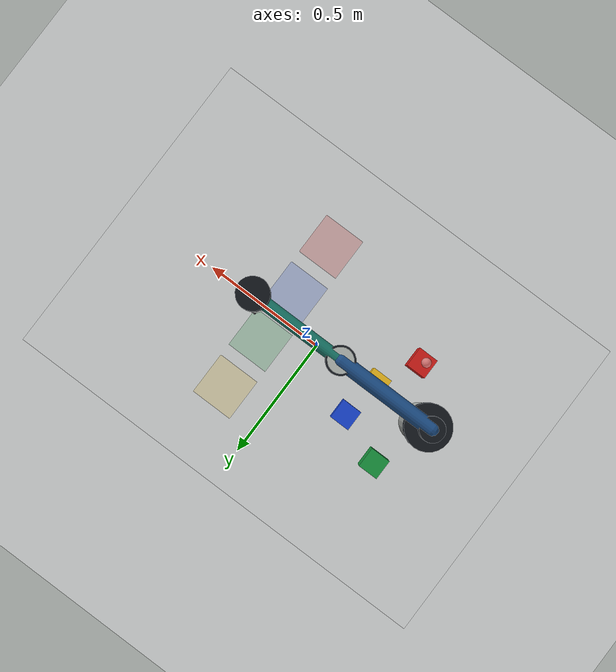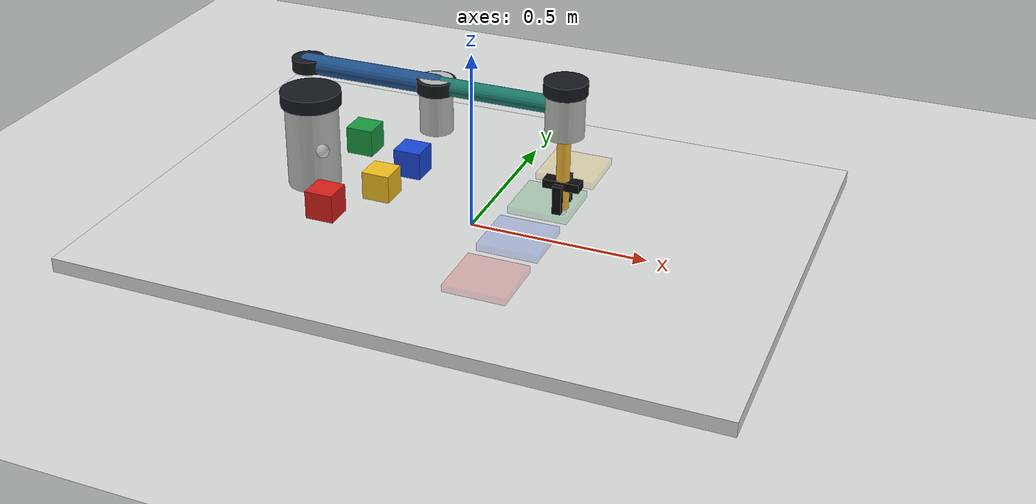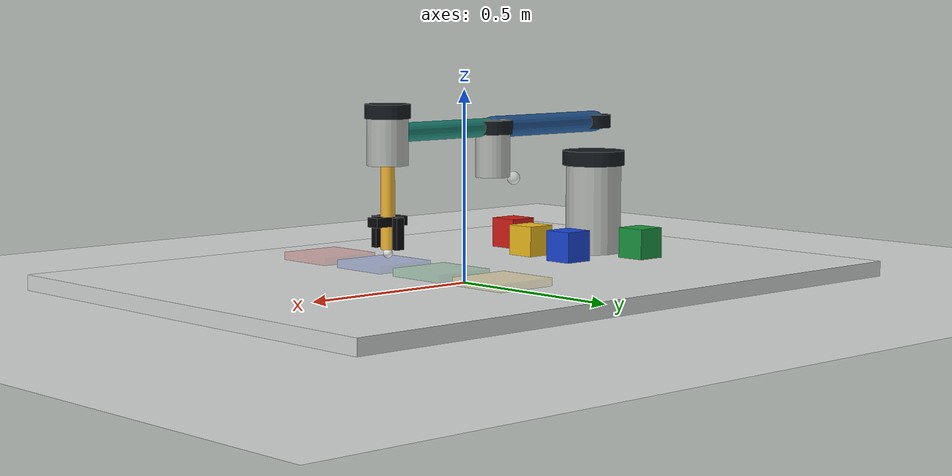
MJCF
<mujoco model="physical_ai_sorting_scara_ik">
  <compiler angle="degree" coordinate="local" inertiafromgeom="true"/>
  <option timestep="0.01" gravity="0 0 -9.81"/>

  <!-- The arm is used kinematically in Version 2, so arm geoms are visual-only.
       We will add real actuator dynamics later after the task logic is stable. -->
  <default>
    <joint damping="1.2" armature="0.02" limited="true"/>
    <geom friction="0.8 0.02 0.001"/>
  </default>

  <asset>
    <texture name="grid" type="2d" builtin="checker" rgb1="0.92 0.92 0.90" rgb2="0.78 0.80 0.82" width="256" height="256"/>
    <material name="table_mat" texture="grid" texrepeat="4 4" reflectance="0.1"/>
    <material name="base_mat" rgba="0.08 0.10 0.12 1"/>
    <material name="column_mat" rgba="0.72 0.74 0.72 1"/>
    <material name="link1_mat" rgba="0.12 0.32 0.55 1"/>
    <material name="link2_mat" rgba="0.10 0.48 0.42 1"/>
    <material name="slide_mat" rgba="0.95 0.72 0.20 1"/>
    <material name="gripper_mat" rgba="0.04 0.04 0.05 1"/>
    <material name="red_mat" rgba="0.85 0.12 0.10 1"/>
    <material name="blue_mat" rgba="0.10 0.28 0.85 1"/>
    <material name="green_mat" rgba="0.10 0.60 0.25 1"/>
    <material name="yellow_mat" rgba="0.95 0.75 0.12 1"/>
    <material name="bin_red_mat" rgba="0.85 0.12 0.10 0.22"/>
    <material name="bin_blue_mat" rgba="0.10 0.28 0.85 0.22"/>
    <material name="bin_green_mat" rgba="0.10 0.60 0.25 0.22"/>
    <material name="bin_yellow_mat" rgba="0.95 0.75 0.12 0.22"/>
    <material name="target_mat" rgba="1.0 1.0 1.0 0.45"/>
  </asset>

  <worldbody>
    <!-- Camera and lighting are part of the digital twin. Later, this camera
         can be used for perception instead of simulator ground truth. -->
    <light name="key" pos="0 -2.5 4" dir="0 0 -1" diffuse="0.85 0.85 0.85"/>
    <camera name="overview" pos="0 -2.35 1.85" xyaxes="1 0 0 0 0.58 0.82"/>

    <geom name="floor" type="plane" size="2.2 2.2 0.05" material="table_mat"/>
    <geom name="table" type="box" pos="0 0 0.02" size="0.9 0.65 0.02" material="table_mat"/>

    <body name="arm_base" pos="-0.48 0 0.30">
      <geom name="base_footprint" type="box" pos="0 0 -0.30" size="0.13 0.13 0.025" material="base_mat" contype="0" conaffinity="0"/>
      <geom name="base_column" type="cylinder" pos="0 0 -0.15" size="0.075 0.15" material="column_mat" contype="0" conaffinity="0"/>
      <geom name="base_cap" type="cylinder" pos="0 0 0" size="0.085 0.02" material="base_mat" contype="0" conaffinity="0"/>
      <joint name="base_yaw" type="hinge" axis="0 0 1" range="-170 170"/>

      <body name="link1" pos="0 0 0.10">
        <geom name="link1_bar" type="capsule" fromto="0 0 0 0.38 0 0" size="0.028" material="link1_mat" contype="0" conaffinity="0"/>
        <geom name="shoulder_hub" type="cylinder" size="0.045 0.018" material="base_mat" contype="0" conaffinity="0"/>

        <body name="elbow" pos="0.38 0 0">
          <geom name="elbow_column" type="cylinder" pos="0 0 -0.055" size="0.045 0.075" material="column_mat" contype="0" conaffinity="0"/>
          <geom name="elbow_hub" type="cylinder" size="0.052 0.018" material="base_mat" contype="0" conaffinity="0"/>
          <joint name="elbow_yaw" type="hinge" axis="0 0 1" range="-155 155"/>

          <body name="link2" pos="0 0 0">
            <geom name="link2_bar" type="capsule" fromto="0 0 0 0.36 0 0" size="0.024" material="link2_mat" contype="0" conaffinity="0"/>

            <body name="vertical_slide" pos="0.36 0 0">
              <joint name="gripper_z" type="slide" axis="0 0 1" range="-0.02 0.34"/>
              <geom name="wrist_column" type="cylinder" pos="0 0 -0.015" size="0.052 0.065" material="column_mat" contype="0" conaffinity="0"/>
              <geom name="wrist_cap" type="cylinder" pos="0 0 0.055" size="0.058 0.018" material="base_mat" contype="0" conaffinity="0"/>
              <geom name="slide_rail" type="cylinder" pos="0 0 -0.13" size="0.018 0.16" material="slide_mat" contype="0" conaffinity="0"/>

              <body name="end_effector" pos="0 0 -0.22">
                <geom name="gripper_palm" type="box" size="0.05 0.018 0.012" material="gripper_mat" contype="0" conaffinity="0"/>
                <geom name="left_finger" type="box" pos="0 0.04 -0.028" size="0.012 0.008 0.04" material="gripper_mat" contype="0" conaffinity="0"/>
                <geom name="right_finger" type="box" pos="0 -0.04 -0.028" size="0.012 0.008 0.04" material="gripper_mat" contype="0" conaffinity="0"/>
                <site name="tool0" pos="0 0 -0.08" size="0.008" rgba="0.2 0.8 1 0.8"/>
                <site name="grasp_site" pos="0 0 -0.08" size="0.012" rgba="1 1 1 0.8"/>
              </body>
            </body>
          </body>
        </body>
      </body>
    </body>

    <!-- Visual marker for the current IK target. It is moved by Python. -->
    <body name="ik_target" mocap="true" pos="-0.35 -0.18 0.24">
      <geom type="sphere" size="0.018" material="target_mat" contype="0" conaffinity="0"/>
    </body>

    <!-- Boxes are free bodies. The script attaches a box to the gripper while
         it is carried; later we can replace that with real gripper contacts. -->
    <body name="red_box" pos="-0.35 -0.18 0.09">
      <freejoint name="red_box_joint"/>
      <geom type="box" size="0.04 0.04 0.04" material="red_mat" mass="0.06"/>
    </body>
    <body name="blue_box" pos="-0.24 0.14 0.09">
      <freejoint name="blue_box_joint"/>
      <geom type="box" size="0.04 0.04 0.04" material="blue_mat" mass="0.06"/>
    </body>
    <body name="green_box" pos="-0.43 0.22 0.09">
      <freejoint name="green_box_joint"/>
      <geom type="box" size="0.04 0.04 0.04" material="green_mat" mass="0.06"/>
    </body>
    <body name="yellow_box" pos="-0.26 -0.02 0.09">
      <freejoint name="yellow_box_joint"/>
      <geom type="box" size="0.04 0.04 0.04" material="yellow_mat" mass="0.06"/>
    </body>

    <!-- Destination zones. They are visual targets, not physical containers yet. -->
    <body name="red_bin" pos="0.18 -0.33 0.055">
      <geom type="box" size="0.085 0.085 0.01" material="bin_red_mat" contype="0" conaffinity="0"/>
    </body>
    <body name="blue_bin" pos="0.18 -0.11 0.055">
      <geom type="box" size="0.085 0.085 0.01" material="bin_blue_mat" contype="0" conaffinity="0"/>
    </body>
    <body name="green_bin" pos="0.18 0.11 0.055">
      <geom type="box" size="0.085 0.085 0.01" material="bin_green_mat" contype="0" conaffinity="0"/>
    </body>
    <body name="yellow_bin" pos="0.18 0.33 0.055">
      <geom type="box" size="0.085 0.085 0.01" material="bin_yellow_mat" contype="0" conaffinity="0"/>
    </body>
  </worldbody>
</mujoco>
